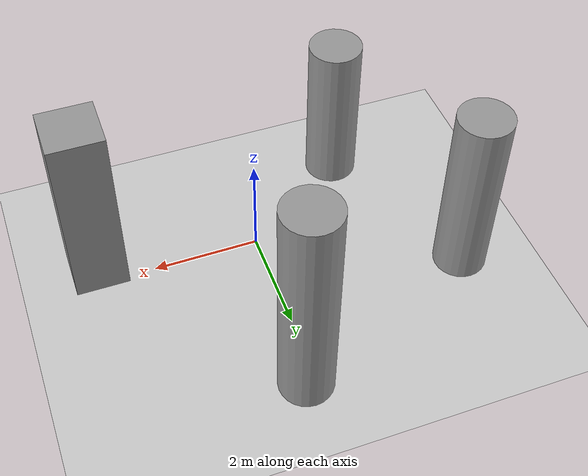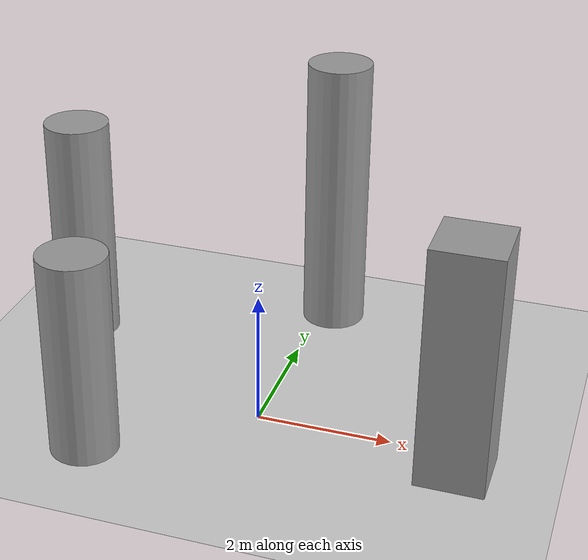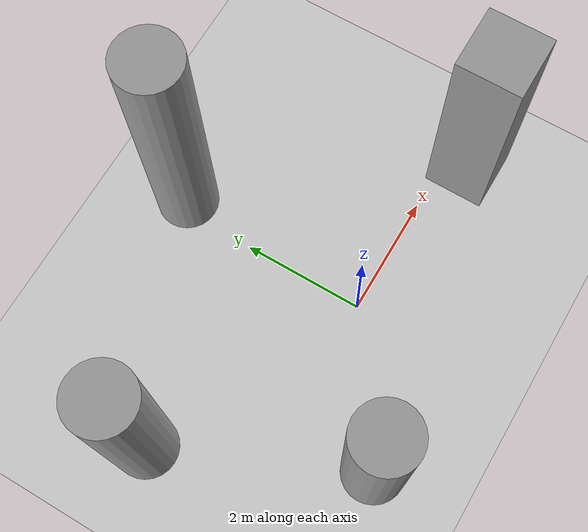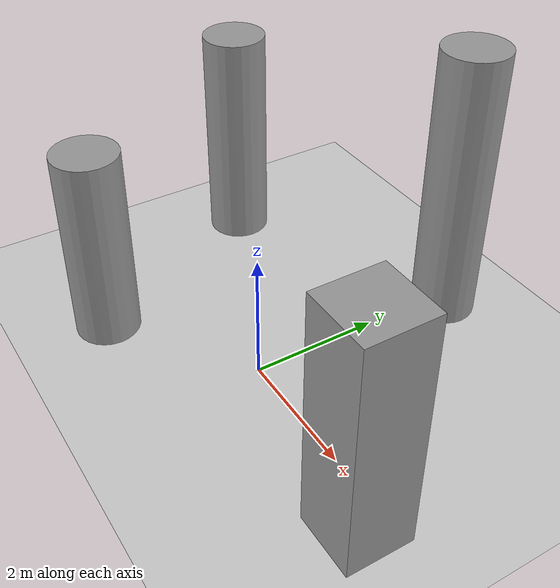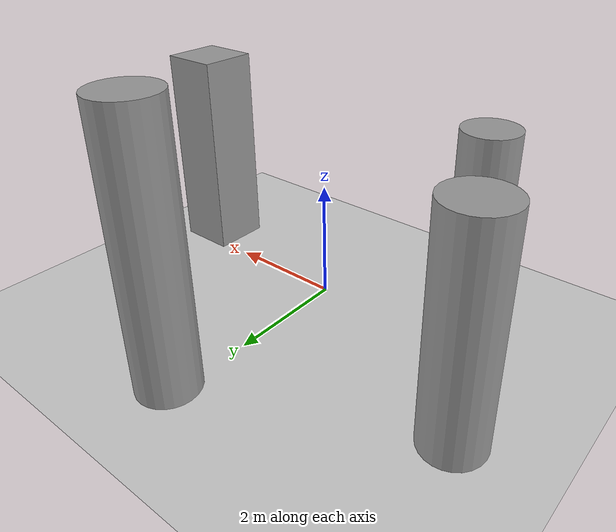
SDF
<sdf version="1.6">
 <world name="default">
  <light name="sun" type="directional">
   <pose>0 0 10 0 -0 0</pose>
   <diffuse>0.8 0.8 0.8 1</diffuse>
   <specular>0.2 0.2 0.2 1</specular>
   <attenuation>
    <range>1000</range>
    <constant>0.9</constant>
    <linear>0.01</linear>
    <quadratic>0.001</quadratic>
   </attenuation>
   <direction>-0.5 0.1 -0.9</direction>
  </light>
  <model name="ground_plane">
   <static>1</static>
   <link name="link">
    <collision name="collision">
     <geometry><plane><normal>0 0 1</normal><size>100 100</size></plane></geometry>
     <surface><friction><ode><mu>100</mu><mu2>50</mu2></ode></friction></surface>
    </collision>
    <visual name="visual">
     <cast_shadows>0</cast_shadows>
     <geometry><plane><normal>0 0 1</normal><size>100 100</size></plane></geometry>
     <material>
      <script><uri>file://media/materials/scripts/gazebo.material</uri><name>Gazebo/Grey</name></script>
     </material>
    </visual>
   </link>
  </model>
  <gravity>0 0 -9.8</gravity>
  <magnetic_field>6e-06 2.3e-05 -4.2e-05</magnetic_field>
  <atmosphere type="adiabatic"/>
  <physics name="default_physics" default="0" type="ode">
   <max_step_size>0.001</max_step_size>
   <real_time_factor>1</real_time_factor>
   <real_time_update_rate>1000</real_time_update_rate>
  </physics>
  <scene><ambient>0.4 0.4 0.4 1</ambient><background>0.7 0.7 0.7 1</background><shadows>1</shadows></scene>
  <audio><device>default</device></audio>
  <spherical_coordinates>
   <surface_model>EARTH_WGS84</surface_model>
   <latitude_deg>0</latitude_deg>
   <longitude_deg>0</longitude_deg>
   <elevation>0</elevation>
   <heading_deg>0</heading_deg>
  </spherical_coordinates>
  <model name="unit_cylinder">
   <pose>-2.12027 -1.48223 1.54691 0 -0 9e-06</pose>
   <link name="link">
    <inertial>
     <mass>1</mass>
     <inertia><ixx>0.145833</ixx><ixy>0</ixy><ixz>0</ixz><iyy>0.145833</iyy><iyz>0</iyz><izz>0.125</izz></inertia>
    </inertial>
    <collision name="collision">
     <geometry><cylinder><radius>0.5</radius><length>3.09383</length></cylinder></geometry>
    </collision>
    <visual name="visual">
     <geometry><cylinder><radius>0.5</radius><length>3.09383</length></cylinder></geometry>
     <material>
      <script><name>Gazebo/Grey</name><uri>file://media/materials/scripts/gazebo.material</uri></script>
     </material>
    </visual>
   </link>
  </model>
  <model name="unit_box">
   <pose>3.01527 -0.380941 1.81748 0 -1e-06 -0.002634</pose>
   <link name="unit_box::link">
    <inertial>
     <mass>1</mass>
     <inertia>
      <ixx>0.166667</ixx>
      <ixy>0</ixy>
      <ixz>0</ixz>
      <iyy>0.166667</iyy>
      <iyz>0</iyz>
      <izz>0.166667</izz>
     </inertia>
    </inertial>
    <collision name="collision"><geometry><box><size>1 1 3.63496</size></box></geometry></collision>
    <visual name="visual">
     <geometry><box><size>1 1 3.63496</size></box></geometry>
     <material>
      <script><name>Gazebo/Grey</name><uri>file://media/materials/scripts/gazebo.material</uri></script>
     </material>
    </visual>
   </link>
  </model>
  <model name="unit_cylinder_0">
   <pose>-3.51975 1.65708 1.79253 0 -0 7.8e-05</pose>
   <link name="link">
    <inertial>
     <mass>1</mass>
     <inertia><ixx>0.145833</ixx><ixy>0</ixy><ixz>0</ixz><iyy>0.145833</iyy><iyz>0</iyz><izz>0.125</izz></inertia>
    </inertial>
    <collision name="collision">
     <geometry><cylinder><radius>0.5</radius><length>3.58507</length></cylinder></geometry>
    </collision>
    <visual name="visual">
     <geometry><cylinder><radius>0.5</radius><length>3.58507</length></cylinder></geometry>
     <material>
      <script><name>Gazebo/Grey</name><uri>file://media/materials/scripts/gazebo.material</uri></script>
     </material>
    </visual>
   </link>
  </model>
  <model name="unit_cylinder_1">
   <pose>0.208565 3.29195 2.20629 0 -0 -9.1e-05</pose>
   <link name="link">
    <inertial>
     <mass>1</mass>
     <inertia><ixx>0.145833</ixx><ixy>0</ixy><ixz>0</ixz><iyy>0.145833</iyy><iyz>0</iyz><izz>0.125</izz></inertia>
    </inertial>
    <collision name="collision">
     <geometry><cylinder><radius>0.5</radius><length>4.4126</length></cylinder></geometry>
    </collision>
    <visual name="visual">
     <geometry><cylinder><radius>0.5</radius><length>4.4126</length></cylinder></geometry>
     <material>
      <script><name>Gazebo/Grey</name><uri>file://media/materials/scripts/gazebo.material</uri></script>
     </material>
    </visual>
   </link>
  </model>
 </world>
</sdf>
